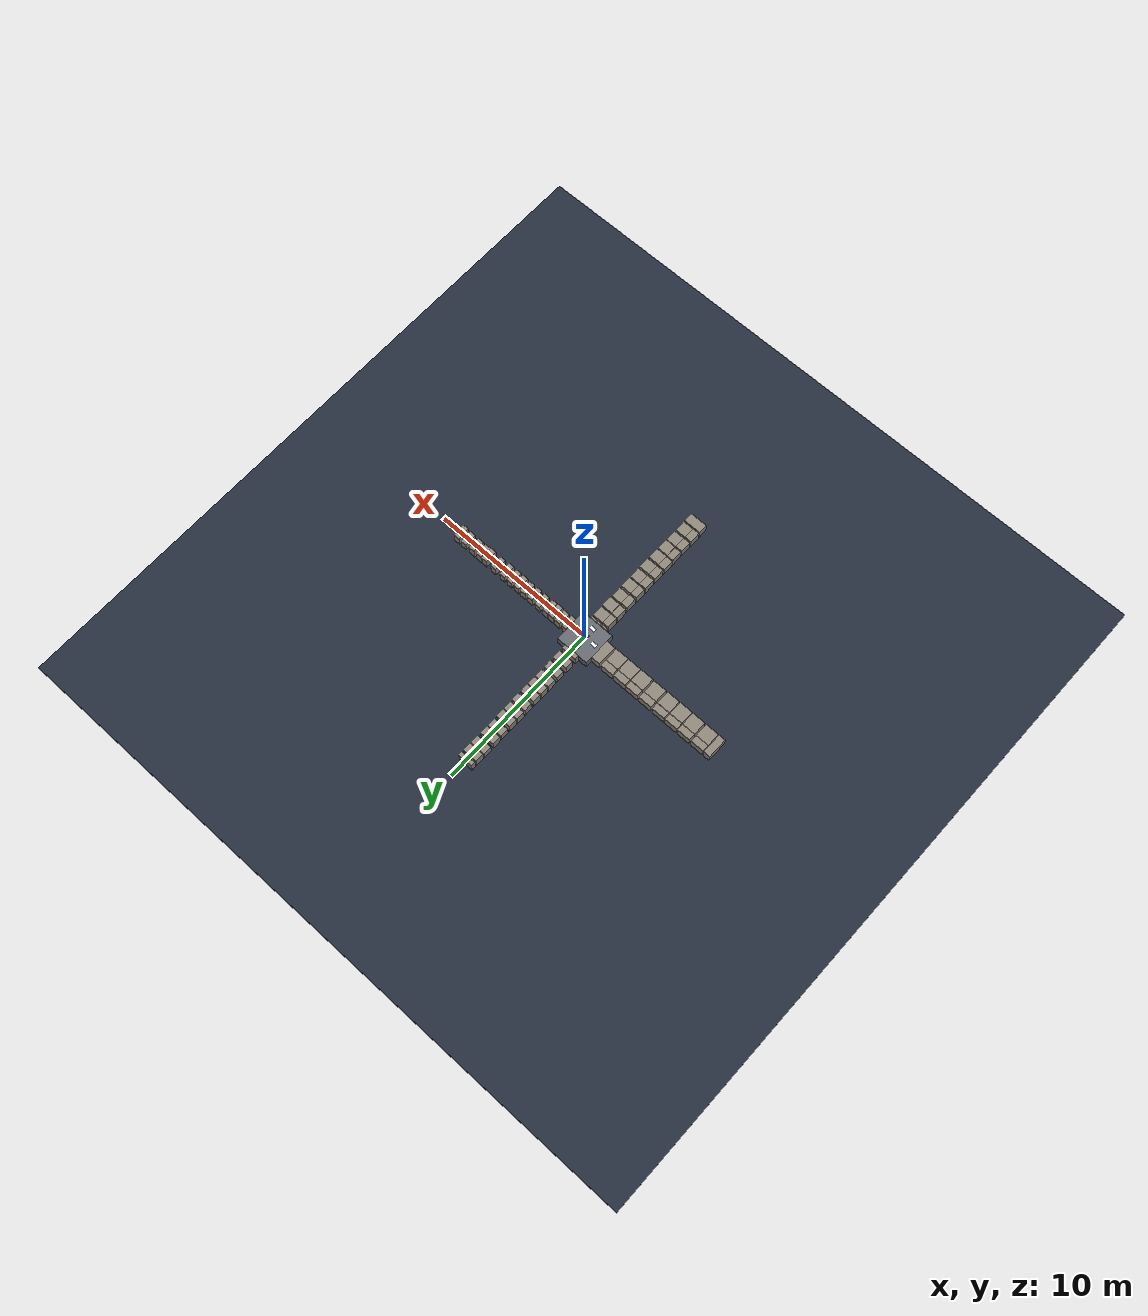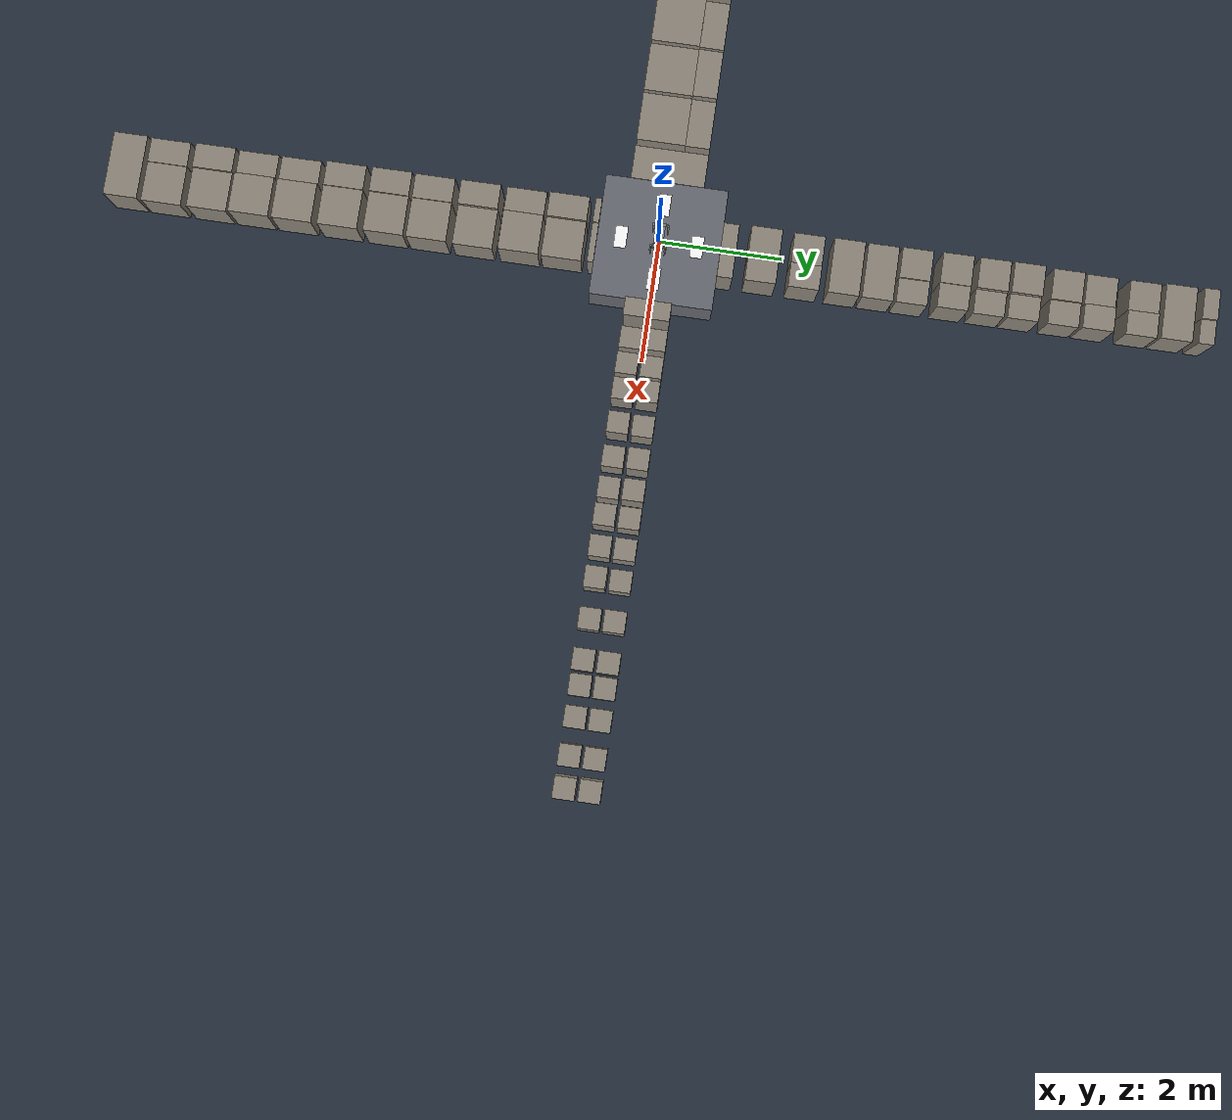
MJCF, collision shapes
<mujoco model="two_row_stones_cross_1_4_7_10">
  <include file="dog_502.xml"/>
  <statistic center="0 0 0.12" extent="1.35" />
  <visual>
    <headlight diffuse="0.6 0.6 0.6" ambient="0.3 0.3 0.3" specular="0 0 0" />
    <rgba haze="0.15 0.25 0.35 1" />
    <global azimuth="-130" elevation="-20" />
  </visual>
  <asset>
    <texture type="skybox" builtin="gradient" rgb1="0.3 0.5 0.7" rgb2="0 0 0" width="512" height="3072" />
    <texture type="2d" name="groundplane" builtin="checker" mark="edge" rgb1="0.18 0.22 0.28" rgb2="0.10 0.14 0.18" markrgb="0.8 0.8 0.8" width="300" height="300" />
    <material name="groundplane" texture="groundplane" texuniform="true" texrepeat="5 5" reflectance="0.0" />
    <texture name="tex_label_1" type="2d" file="./imgs/label_1.png" />
    <material name="mat_label_1" texture="tex_label_1" specular="0" shininess="0" emission="1" texrepeat="1 1" rgba="1 1 1 1" />
    <texture name="tex_label_7" type="2d" file="./imgs/label_7.png" />
    <material name="mat_label_7" texture="tex_label_7" specular="0" shininess="0" emission="1" texrepeat="1 1" rgba="1 1 1 1" />
    <texture name="tex_label_10" type="2d" file="./imgs/label_10.png" />
    <material name="mat_label_10" texture="tex_label_10" specular="0" shininess="0" emission="1" texrepeat="1 1" rgba="1 1 1 1" />
    <texture name="tex_label_4" type="2d" file="./imgs/label_4.png" />
    <material name="mat_label_4" texture="tex_label_4" specular="0" shininess="0" emission="1" texrepeat="1 1" rgba="1 1 1 1" />
  </asset>
  <worldbody>
    <light pos="0 0 1.5" dir="0 0 -1" directional="true" />

    <geom name="pit_floor" pos="0 0 -0.65" size="20 20 0.05" type="box" material="groundplane" />
    <geom name="hub" pos="0 0 -0.3" type="box" size="1.0 1.0 0.3" rgba="0.40 0.41 0.44 1" />

    <!-- neg_x direction, level 1, curriculum row 0, difficulty=0.0, stone_size=0.80m, gap choices=1..2 cells -->
    <geom name="neg_x_stone_01_merged" pos="-1.275 0 -0.2975" type="box" size="0.275 0.6 0.3025" rgba="0.55 0.52 0.47 1" />
    <geom name="neg_x_stone_02_row_a" pos="-2.05 0.4 -0.2975" type="box" size="0.4 0.2 0.3025" rgba="0.55 0.52 0.47 1" />
    <geom name="neg_x_stone_03_row_b" pos="-2.05 -0.2 -0.29" type="box" size="0.4 0.4 0.31" rgba="0.55 0.52 0.47 1" />
    <geom name="neg_x_stone_04_row_a" pos="-2.9 0.4 -0.2825" type="box" size="0.4 0.2 0.3175" rgba="0.55 0.52 0.47 1" />
    <geom name="neg_x_stone_05_row_b" pos="-2.9 -0.2 -0.29" type="box" size="0.4 0.4 0.31" rgba="0.55 0.52 0.47 1" />
    <geom name="neg_x_stone_06_row_a" pos="-3.75 0.4 -0.2975" type="box" size="0.4 0.2 0.3025" rgba="0.55 0.52 0.47 1" />
    <geom name="neg_x_stone_07_row_b" pos="-3.75 -0.2 -0.2825" type="box" size="0.4 0.4 0.3175" rgba="0.55 0.52 0.47 1" />
    <geom name="neg_x_stone_08_row_a" pos="-4.65 0.4 -0.2825" type="box" size="0.4 0.2 0.3175" rgba="0.55 0.52 0.47 1" />
    <geom name="neg_x_stone_09_row_b" pos="-4.65 -0.2 -0.2975" type="box" size="0.4 0.4 0.3025" rgba="0.55 0.52 0.47 1" />
    <geom name="neg_x_stone_10_row_a" pos="-5.55 0.4 -0.2975" type="box" size="0.4 0.2 0.3025" rgba="0.55 0.52 0.47 1" />
    <geom name="neg_x_stone_11_row_b" pos="-5.55 -0.2 -0.2825" type="box" size="0.4 0.4 0.3175" rgba="0.55 0.52 0.47 1" />
    <geom name="neg_x_stone_12_row_a" pos="-6.4 0.4 -0.29" type="box" size="0.4 0.2 0.31" rgba="0.55 0.52 0.47 1" />
    <geom name="neg_x_stone_13_row_b" pos="-6.4 -0.2 -0.2825" type="box" size="0.4 0.4 0.3175" rgba="0.55 0.52 0.47 1" />
    <geom name="neg_x_stone_14_row_a" pos="-7.25 0.4 -0.2975" type="box" size="0.4 0.2 0.3025" rgba="0.55 0.52 0.47 1" />
    <geom name="neg_x_stone_15_row_b" pos="-7.25 -0.2 -0.29" type="box" size="0.4 0.4 0.31" rgba="0.55 0.52 0.47 1" />
    <geom name="neg_x_stone_16_row_a" pos="-8.15 0.4 -0.2825" type="box" size="0.4 0.2 0.3175" rgba="0.55 0.52 0.47 1" />
    <geom name="neg_x_stone_17_row_b" pos="-8.15 -0.2 -0.2975" type="box" size="0.4 0.4 0.3025" rgba="0.55 0.52 0.47 1" />
    <geom name="neg_x_stone_18_merged" pos="-8.8 0 -0.29" type="box" size="0.2 0.6 0.31" rgba="0.55 0.52 0.47 1" />
    <geom name="neg_x_label" pos="-0.62 0 0.002" type="box" size="0.18 0.1 0.0001" material="mat_label_1" contype="0" conaffinity="0" group="1" rgba="1 1 1 1" />

    <!-- pos_y direction, level 7, curriculum row 6, difficulty=0.6, stone_size=0.50m, gap choices=1..4 cells -->
    <geom name="pos_y_stone_01_row_a" pos="0.25 1.125 -0.2675" type="box" size="0.2 0.125 0.3325" rgba="0.55 0.52 0.47 1" />
    <geom name="pos_y_stone_02_row_b" pos="-0.2 1.125 -0.275" type="box" size="0.25 0.125 0.325" rgba="0.55 0.52 0.47 1" />
    <geom name="pos_y_stone_03_row_a" pos="0.25 1.7 -0.2525" type="box" size="0.2 0.25 0.3475" rgba="0.55 0.52 0.47 1" />
    <geom name="pos_y_stone_04_row_b" pos="-0.2 1.7 -0.245" type="box" size="0.25 0.25 0.355" rgba="0.55 0.52 0.47 1" />
    <geom name="pos_y_stone_05_row_a" pos="0.25 2.4 -0.26" type="box" size="0.2 0.25 0.34" rgba="0.55 0.52 0.47 1" />
    <geom name="pos_y_stone_06_row_b" pos="-0.2 2.4 -0.275" type="box" size="0.25 0.25 0.325" rgba="0.55 0.52 0.47 1" />
    <geom name="pos_y_stone_07_merged" pos="0 3.05 -0.2675" type="box" size="0.45 0.25 0.3325" rgba="0.55 0.52 0.47 1" />
    <geom name="pos_y_stone_08_merged" pos="0 3.6 -0.275" type="box" size="0.45 0.25 0.325" rgba="0.55 0.52 0.47 1" />
    <geom name="pos_y_stone_09_row_a" pos="0.25 4.15 -0.275" type="box" size="0.2 0.25 0.325" rgba="0.55 0.52 0.47 1" />
    <geom name="pos_y_stone_10_row_b" pos="-0.2 4.15 -0.26" type="box" size="0.25 0.25 0.34" rgba="0.55 0.52 0.47 1" />
    <geom name="pos_y_stone_11_row_a" pos="0.25 4.8 -0.2525" type="box" size="0.2 0.25 0.3475" rgba="0.55 0.52 0.47 1" />
    <geom name="pos_y_stone_12_row_b" pos="-0.2 4.8 -0.245" type="box" size="0.25 0.25 0.355" rgba="0.55 0.52 0.47 1" />
    <geom name="pos_y_stone_13_row_a" pos="0.25 5.4 -0.29" type="box" size="0.2 0.25 0.31" rgba="0.55 0.52 0.47 1" />
    <geom name="pos_y_stone_14_row_b" pos="-0.2 5.4 -0.245" type="box" size="0.25 0.25 0.355" rgba="0.55 0.52 0.47 1" />
    <geom name="pos_y_stone_15_row_a" pos="0.25 5.95 -0.2825" type="box" size="0.2 0.25 0.3175" rgba="0.55 0.52 0.47 1" />
    <geom name="pos_y_stone_16_row_b" pos="-0.2 5.95 -0.2375" type="box" size="0.25 0.25 0.3625" rgba="0.55 0.52 0.47 1" />
    <geom name="pos_y_stone_17_row_a" pos="0.25 6.6 -0.29" type="box" size="0.2 0.25 0.31" rgba="0.55 0.52 0.47 1" />
    <geom name="pos_y_stone_18_row_b" pos="-0.2 6.6 -0.2675" type="box" size="0.25 0.25 0.3325" rgba="0.55 0.52 0.47 1" />
    <geom name="pos_y_stone_19_row_a" pos="0.25 7.15 -0.2675" type="box" size="0.2 0.25 0.3325" rgba="0.55 0.52 0.47 1" />
    <geom name="pos_y_stone_20_row_b" pos="-0.2 7.15 -0.29" type="box" size="0.25 0.25 0.31" rgba="0.55 0.52 0.47 1" />
    <geom name="pos_y_stone_21_row_a" pos="0.25 7.85 -0.275" type="box" size="0.2 0.25 0.325" rgba="0.55 0.52 0.47 1" />
    <geom name="pos_y_stone_22_row_b" pos="-0.2 7.85 -0.29" type="box" size="0.25 0.25 0.31" rgba="0.55 0.52 0.47 1" />
    <geom name="pos_y_stone_23_merged" pos="0 8.4 -0.2525" type="box" size="0.45 0.25 0.3475" rgba="0.55 0.52 0.47 1" />
    <geom name="pos_y_stone_24_row_a" pos="0.25 8.875 -0.2525" type="box" size="0.2 0.125 0.3475" rgba="0.55 0.52 0.47 1" />
    <geom name="pos_y_stone_25_row_b" pos="-0.2 8.875 -0.23" type="box" size="0.25 0.125 0.37" rgba="0.55 0.52 0.47 1" />
    <geom name="pos_y_label" pos="0 0.62 0.002" type="box" size="0.1 0.18 0.0001" material="mat_label_7" quat="0.7071067811865476 0 0 0.7071067811865475" contype="0" conaffinity="0" group="1" rgba="1 1 1 1" />

    <!-- pos_x direction, level 10, curriculum row 9, difficulty=0.9, stone_size=0.35m, gap choices=1..6 cells -->
    <geom name="pos_x_stone_01_row_a" pos="1.15 -0.225 -0.2375" type="box" size="0.15 0.175 0.3625" rgba="0.55 0.52 0.47 1" />
    <geom name="pos_x_stone_02_row_b" pos="1.15 0.175 -0.26" type="box" size="0.15 0.175 0.34" rgba="0.55 0.52 0.47 1" />
    <geom name="pos_x_stone_03_row_a" pos="1.625 -0.225 -0.2975" type="box" size="0.175 0.175 0.3025" rgba="0.55 0.52 0.47 1" />
    <geom name="pos_x_stone_04_row_b" pos="1.625 0.175 -0.26" type="box" size="0.175 0.175 0.34" rgba="0.55 0.52 0.47 1" />
    <geom name="pos_x_stone_05_row_a" pos="2.075 -0.225 -0.2375" type="box" size="0.175 0.175 0.3625" rgba="0.55 0.52 0.47 1" />
    <geom name="pos_x_stone_06_row_b" pos="2.075 0.175 -0.2525" type="box" size="0.175 0.175 0.3475" rgba="0.55 0.52 0.47 1" />
    <geom name="pos_x_stone_07_row_a" pos="2.475 -0.225 -0.2675" type="box" size="0.175 0.175 0.3325" rgba="0.55 0.52 0.47 1" />
    <geom name="pos_x_stone_08_row_b" pos="2.475 0.175 -0.245" type="box" size="0.175 0.175 0.355" rgba="0.55 0.52 0.47 1" />
    <geom name="pos_x_stone_09_row_a" pos="3.025 -0.225 -0.275" type="box" size="0.175 0.175 0.325" rgba="0.55 0.52 0.47 1" />
    <geom name="pos_x_stone_10_row_b" pos="3.025 0.175 -0.2975" type="box" size="0.175 0.175 0.3025" rgba="0.55 0.52 0.47 1" />
    <geom name="pos_x_stone_11_row_a" pos="3.575 -0.225 -0.29" type="box" size="0.175 0.175 0.31" rgba="0.55 0.52 0.47 1" />
    <geom name="pos_x_stone_12_row_b" pos="3.575 0.175 -0.2525" type="box" size="0.175 0.175 0.3475" rgba="0.55 0.52 0.47 1" />
    <geom name="pos_x_stone_13_row_a" pos="4.075 -0.225 -0.2975" type="box" size="0.175 0.175 0.3025" rgba="0.55 0.52 0.47 1" />
    <geom name="pos_x_stone_14_row_b" pos="4.075 0.175 -0.2525" type="box" size="0.175 0.175 0.3475" rgba="0.55 0.52 0.47 1" />
    <geom name="pos_x_stone_15_row_a" pos="4.525 -0.225 -0.2525" type="box" size="0.175 0.175 0.3475" rgba="0.55 0.52 0.47 1" />
    <geom name="pos_x_stone_16_row_b" pos="4.525 0.175 -0.2675" type="box" size="0.175 0.175 0.3325" rgba="0.55 0.52 0.47 1" />
    <geom name="pos_x_stone_17_row_a" pos="5.025 -0.225 -0.26" type="box" size="0.175 0.175 0.34" rgba="0.55 0.52 0.47 1" />
    <geom name="pos_x_stone_18_row_b" pos="5.025 0.175 -0.2675" type="box" size="0.175 0.175 0.3325" rgba="0.55 0.52 0.47 1" />
    <geom name="pos_x_stone_19_row_a" pos="5.525 -0.225 -0.23" type="box" size="0.175 0.175 0.37" rgba="0.55 0.52 0.47 1" />
    <geom name="pos_x_stone_20_row_b" pos="5.525 0.175 -0.2825" type="box" size="0.175 0.175 0.3175" rgba="0.55 0.52 0.47 1" />
    <geom name="pos_x_stone_21_row_a" pos="6.175 -0.225 -0.2975" type="box" size="0.175 0.175 0.3025" rgba="0.55 0.52 0.47 1" />
    <geom name="pos_x_stone_22_row_b" pos="6.175 0.175 -0.245" type="box" size="0.175 0.175 0.355" rgba="0.55 0.52 0.47 1" />
    <geom name="pos_x_stone_23_row_a" pos="6.825 -0.225 -0.2375" type="box" size="0.175 0.175 0.3625" rgba="0.55 0.52 0.47 1" />
    <geom name="pos_x_stone_24_row_b" pos="6.825 0.175 -0.2375" type="box" size="0.175 0.175 0.3625" rgba="0.55 0.52 0.47 1" />
    <geom name="pos_x_stone_25_row_a" pos="7.225 -0.225 -0.2975" type="box" size="0.175 0.175 0.3025" rgba="0.55 0.52 0.47 1" />
    <geom name="pos_x_stone_26_row_b" pos="7.225 0.175 -0.245" type="box" size="0.175 0.175 0.355" rgba="0.55 0.52 0.47 1" />
    <geom name="pos_x_stone_27_row_a" pos="7.725 -0.225 -0.2975" type="box" size="0.175 0.175 0.3025" rgba="0.55 0.52 0.47 1" />
    <geom name="pos_x_stone_28_row_b" pos="7.725 0.175 -0.245" type="box" size="0.175 0.175 0.355" rgba="0.55 0.52 0.47 1" />
    <geom name="pos_x_stone_29_row_a" pos="8.325 -0.225 -0.29" type="box" size="0.175 0.175 0.31" rgba="0.55 0.52 0.47 1" />
    <geom name="pos_x_stone_30_row_b" pos="8.325 0.175 -0.29" type="box" size="0.175 0.175 0.31" rgba="0.55 0.52 0.47 1" />
    <geom name="pos_x_stone_31_row_a" pos="8.825 -0.225 -0.23" type="box" size="0.175 0.175 0.37" rgba="0.55 0.52 0.47 1" />
    <geom name="pos_x_stone_32_row_b" pos="8.825 0.175 -0.26" type="box" size="0.175 0.175 0.34" rgba="0.55 0.52 0.47 1" />
    <geom name="pos_x_label" pos="0.62 0 0.002" type="box" size="0.18 0.1 0.0001" material="mat_label_10" contype="0" conaffinity="0" group="1" rgba="1 1 1 1" />

    <!-- neg_y direction, level 4, curriculum row 3, difficulty=0.3, stone_size=0.65m, gap choices=1..2 cells -->
    <geom name="neg_y_stone_01_row_a" pos="-0.35 -1.05 -0.2525" type="box" size="0.2 0.05 0.3475" rgba="0.55 0.52 0.47 1" />
    <geom name="neg_y_stone_02_row_b" pos="0.175 -1.05 -0.2675" type="box" size="0.325 0.05 0.3325" rgba="0.55 0.52 0.47 1" />
    <geom name="neg_y_stone_03_row_a" pos="-0.35 -1.525 -0.2525" type="box" size="0.2 0.325 0.3475" rgba="0.55 0.52 0.47 1" />
    <geom name="neg_y_stone_04_row_b" pos="0.175 -1.525 -0.2825" type="box" size="0.325 0.325 0.3175" rgba="0.55 0.52 0.47 1" />
    <geom name="neg_y_stone_05_row_a" pos="-0.35 -2.225 -0.275" type="box" size="0.2 0.325 0.325" rgba="0.55 0.52 0.47 1" />
    <geom name="neg_y_stone_06_row_b" pos="0.175 -2.225 -0.26" type="box" size="0.325 0.325 0.34" rgba="0.55 0.52 0.47 1" />
    <geom name="neg_y_stone_07_row_a" pos="-0.35 -2.975 -0.26" type="box" size="0.2 0.325 0.34" rgba="0.55 0.52 0.47 1" />
    <geom name="neg_y_stone_08_row_b" pos="0.175 -2.975 -0.2975" type="box" size="0.325 0.325 0.3025" rgba="0.55 0.52 0.47 1" />
    <geom name="neg_y_stone_09_row_a" pos="-0.35 -3.725 -0.2675" type="box" size="0.2 0.325 0.3325" rgba="0.55 0.52 0.47 1" />
    <geom name="neg_y_stone_10_row_b" pos="0.175 -3.725 -0.275" type="box" size="0.325 0.325 0.325" rgba="0.55 0.52 0.47 1" />
    <geom name="neg_y_stone_11_row_a" pos="-0.35 -4.425 -0.2525" type="box" size="0.2 0.325 0.3475" rgba="0.55 0.52 0.47 1" />
    <geom name="neg_y_stone_12_row_b" pos="0.175 -4.425 -0.2675" type="box" size="0.325 0.325 0.3325" rgba="0.55 0.52 0.47 1" />
    <geom name="neg_y_stone_13_row_a" pos="-0.35 -5.175 -0.26" type="box" size="0.2 0.325 0.34" rgba="0.55 0.52 0.47 1" />
    <geom name="neg_y_stone_14_row_b" pos="0.175 -5.175 -0.2675" type="box" size="0.325 0.325 0.3325" rgba="0.55 0.52 0.47 1" />
    <geom name="neg_y_stone_15_row_a" pos="-0.35 -5.925 -0.2975" type="box" size="0.2 0.325 0.3025" rgba="0.55 0.52 0.47 1" />
    <geom name="neg_y_stone_16_row_b" pos="0.175 -5.925 -0.2675" type="box" size="0.325 0.325 0.3325" rgba="0.55 0.52 0.47 1" />
    <geom name="neg_y_stone_17_row_a" pos="-0.35 -6.625 -0.2975" type="box" size="0.2 0.325 0.3025" rgba="0.55 0.52 0.47 1" />
    <geom name="neg_y_stone_18_row_b" pos="0.175 -6.625 -0.26" type="box" size="0.325 0.325 0.34" rgba="0.55 0.52 0.47 1" />
    <geom name="neg_y_stone_19_row_a" pos="-0.35 -7.325 -0.2675" type="box" size="0.2 0.325 0.3325" rgba="0.55 0.52 0.47 1" />
    <geom name="neg_y_stone_20_row_b" pos="0.175 -7.325 -0.29" type="box" size="0.325 0.325 0.31" rgba="0.55 0.52 0.47 1" />
    <geom name="neg_y_stone_21_row_a" pos="-0.35 -8.075 -0.29" type="box" size="0.2 0.325 0.31" rgba="0.55 0.52 0.47 1" />
    <geom name="neg_y_stone_22_row_b" pos="0.175 -8.075 -0.2975" type="box" size="0.325 0.325 0.3025" rgba="0.55 0.52 0.47 1" />
    <geom name="neg_y_stone_23_merged" pos="-0.025 -8.725 -0.2675" type="box" size="0.525 0.275 0.3325" rgba="0.55 0.52 0.47 1" />
    <geom name="neg_y_label" pos="0 -0.62 0.002" type="box" size="0.1 0.18 0.0001" material="mat_label_4" quat="0.7071067811865476 0 0 -0.7071067811865475" contype="0" conaffinity="0" group="1" rgba="1 1 1 1" />
  </worldbody>
</mujoco>

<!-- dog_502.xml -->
<mujoco model="dog_502_description">
  <compiler angle="radian" meshdir="../../../dog_502_description/meshes"/>

  <default>
    <joint damping="0.01" armature="0.01" frictionloss="0.02"/>
    <geom condim="3" friction="0.8 0.02 0.01"/>
    <default class="visual">
      <geom type="mesh" contype="0" conaffinity="0" group="2"/>
    </default>
  </default>

  <asset>
    <material name="light_grey" rgba="0.75294 0.75294 0.75294 1"/>
    <material name="black" rgba="0.1 0.1 0.1 1"/>
    <material name="red" rgba="1.0 0.0 0.0 1"/>

    <mesh name="base_link_mesh" file="base_link.STL"/>
    <mesh name="FL_hip_mesh" file="FL_hip.STL"/>
    <mesh name="FR_hip_mesh" file="FR_hip.STL"/>
    <mesh name="RL_hip_mesh" file="RL_hip.STL"/>
    <mesh name="RR_hip_mesh" file="RR_hip.STL"/>
    <mesh name="FL_thigh_mesh" file="FL_thigh.STL"/>
    <mesh name="FR_thigh_mesh" file="FR_thigh.STL"/>
    <mesh name="RL_thigh_mesh" file="RL_thigh.STL"/>
    <mesh name="RR_thigh_mesh" file="RR_thigh.STL"/>
    <mesh name="FL_calf_mesh" file="FL_calf.STL"/>
    <mesh name="FR_calf_mesh" file="FR_calf.STL"/>
    <mesh name="RL_calf_mesh" file="RL_calf.STL"/>
    <mesh name="RR_calf_mesh" file="RR_calf.STL"/>
  </asset>

  <worldbody>
    <body name="base" pos="0 0 0.31">
      <inertial pos="0.000037 0.001297 -0.002295" mass="4.142449" diaginertia="0.013374 0.031506 0.039388"/>
      <freejoint name="root"/>
      <geom mesh="base_link_mesh" material="light_grey" class="visual"/>
      <geom name="base_collision" type="box" size="0.15 0.075 0.04"/>

      <body name="camera" pos="0.255 0 0.04185" quat="0.984811 0 0.173672 0">
        <geom name="camera_visual" type="box" size="0.0125 0.06 0.0145" material="black" contype="0" conaffinity="0" group="2"/>
      </body>

      <body name="FL_hip" pos="0.1767 0.05 0">
        <inertial pos="-0.00457081 -0.00969999 0.0002578" mass="0.50149755" diaginertia="0.00011158 0.00021376 0.00016301"/>
        <joint name="FL_hip_joint" axis="1 0 0" range="-0.837758 0.837758" actuatorfrcrange="-17 17"/>
        <geom mesh="FL_hip_mesh" material="light_grey" class="visual"/>
        <geom name="FL_hip_collision" type="box" size="0.025 0.04 0.03"/>
        <body name="FL_thigh" pos="0 0.0684 0">
          <inertial pos="-0.00194747 -0.02547458 -0.01388663" mass="0.64867804" diaginertia="0.00138293 0.00137329 0.00032193"/>
          <joint name="FL_thigh_joint" axis="0 1 0" range="-1.5708 3.49066" actuatorfrcrange="-17 17"/>
          <geom mesh="FL_thigh_mesh" material="light_grey" class="visual"/>
          <geom name="FL_thigh_collision" type="box" pos="0 0 -0.09" quat="0.707107 0 0.707107 0" size="0.09 0.015 0.0175"/>
          <body name="FL_calf" pos="0 0 -0.18">
            <inertial pos="0.01310003 -0.00009903 -0.09935467" mass="0.06024443" diaginertia="0.0003599 0.00036988 0.00001166"/>
            <joint name="FL_calf_joint" axis="0 1 0" range="-2.72271 -0.837758" actuatorfrcrange="-17 17"/>
            <geom mesh="FL_calf_mesh" material="light_grey" class="visual"/>
            <geom name="FL_calf_collision_0" type="box" pos="0.013 0 -0.053" quat="0.988392 0 -0.151909 0" size="0.00825 0.0075 0.05106"/>
            <geom name="FL_calf_collision_1" type="box" pos="0.0285 0 -0.119" quat="0.997889 0 -0.064954 0" size="0.009 0.0075 0.03"/>
            <geom name="FL_calf_collision_2" type="box" pos="0.02021 0 -0.15878" quat="0.968912 0 0.247404 0" size="0.0125 0.0075 0.02"/>
            <geom name="FL_calf_collision_3" type="box" pos="0.03 0 -0.16" quat="0.998750 0 0.049979 0" size="0.01 0.0075 0.015"/>
            <body name="FL_foot" pos="0 0 -0.18">
              <inertial pos="0 0 0" mass="0.04" diaginertia="0.0000096 0.0000096 0.0000096"/>
              <geom name="FL_foot_visual" type="sphere" size="0.01" material="red" contype="0" conaffinity="0" group="2"/>
              <geom name="FL_foot_collision" type="sphere" pos="0.015 0 0" size="0.0225"/>
            </body>
          </body>
        </body>
      </body>

      <body name="FR_hip" pos="0.1767 -0.05 0">
        <inertial pos="-0.00444412 0.00969999 0.00054368" mass="0.50149755" diaginertia="0.00011122 0.00021421 0.00016383"/>
        <joint name="FR_hip_joint" axis="1 0 0" range="-0.837758 0.837758" actuatorfrcrange="-17 17"/>
        <geom mesh="FR_hip_mesh" material="light_grey" class="visual"/>
        <geom name="FR_hip_collision" type="box" size="0.025 0.04 0.03"/>
        <body name="FR_thigh" pos="0 -0.0684 0">
          <inertial pos="-0.00096707 0.02548196 -0.01388686" mass="0.64867934" diaginertia="0.00138275 0.00137516 0.00032358"/>
          <joint name="FR_thigh_joint" axis="0 1 0" range="-1.5708 3.49066" actuatorfrcrange="-17 17"/>
          <geom mesh="FR_thigh_mesh" material="light_grey" class="visual"/>
          <geom name="FR_thigh_collision" type="box" pos="0 0 -0.09" quat="0.707107 0 0.707107 0" size="0.09 0.015 0.0175"/>
          <body name="FR_calf" pos="0 0 -0.18">
            <inertial pos="0.01310003 0.00010097 -0.09935467" mass="0.06024443" diaginertia="0.0003599 0.00036988 0.00001166"/>
            <joint name="FR_calf_joint" axis="0 1 0" range="-2.72271 -0.837758" actuatorfrcrange="-17 17"/>
            <geom mesh="FR_calf_mesh" material="light_grey" class="visual"/>
            <geom name="FR_calf_collision_0" type="box" pos="0.013 0 -0.053" quat="0.988392 0 -0.151909 0" size="0.00825 0.0075 0.05106"/>
            <geom name="FR_calf_collision_1" type="box" pos="0.0285 0 -0.119" quat="0.997889 0 -0.064954 0" size="0.009 0.0075 0.03"/>
            <geom name="FR_calf_collision_2" type="box" pos="0.02021 0 -0.15878" quat="0.968912 0 0.247404 0" size="0.0125 0.0075 0.02"/>
            <geom name="FR_calf_collision_3" type="box" pos="0.03 0 -0.16" quat="0.998750 0 0.049979 0" size="0.01 0.0075 0.015"/>
            <body name="FR_foot" pos="0 0 -0.18">
              <inertial pos="0 0 0" mass="0.04" diaginertia="0.0000096 0.0000096 0.0000096"/>
              <geom name="FR_foot_visual" type="sphere" size="0.01" material="red" contype="0" conaffinity="0" group="2"/>
              <geom name="FR_foot_collision" type="sphere" pos="0.015 0 0" size="0.0225"/>
            </body>
          </body>
        </body>
      </body>

      <body name="RL_hip" pos="-0.1767 0.05 0">
        <inertial pos="0.00329874 -0.00969999 0.00094432" mass="0.50149755" diaginertia="0.00011271 0.00021836 0.00016649"/>
        <joint name="RL_hip_joint" axis="1 0 0" range="-0.837758 0.837758" actuatorfrcrange="-17 17"/>
        <geom mesh="RL_hip_mesh" material="light_grey" class="visual"/>
        <geom name="RL_hip_collision" type="box" size="0.025 0.04 0.03"/>
        <body name="RL_thigh" pos="0 0.0684 0">
          <inertial pos="-0.00120536 -0.02547458 -0.01523822" mass="0.64867804" diaginertia="0.00135600 0.00134928 0.00032485"/>
          <joint name="RL_thigh_joint" axis="0 1 0" range="-1.5708 3.49066" actuatorfrcrange="-17 17"/>
          <geom mesh="RL_thigh_mesh" material="light_grey" class="visual"/>
          <geom name="RL_thigh_collision" type="box" pos="0 0 -0.09" quat="0.707107 0 0.707107 0" size="0.09 0.015 0.0175"/>
          <body name="RL_calf" pos="0 0 -0.18">
            <inertial pos="0.01310003 -0.00009903 -0.09935467" mass="0.06024443" diaginertia="0.0003599 0.00036988 0.00001166"/>
            <joint name="RL_calf_joint" axis="0 1 0" range="-2.72271 -0.837758" actuatorfrcrange="-17 17"/>
            <geom mesh="RL_calf_mesh" material="light_grey" class="visual"/>
            <geom name="RL_calf_collision_0" type="box" pos="0.013 0 -0.053" quat="0.988392 0 -0.151909 0" size="0.00825 0.0075 0.05106"/>
            <geom name="RL_calf_collision_1" type="box" pos="0.0285 0 -0.119" quat="0.997889 0 -0.064954 0" size="0.009 0.0075 0.03"/>
            <geom name="RL_calf_collision_2" type="box" pos="0.02021 0 -0.15878" quat="0.968912 0 0.247404 0" size="0.0125 0.0075 0.02"/>
            <geom name="RL_calf_collision_3" type="box" pos="0.03 0 -0.16" quat="0.998750 0 0.049979 0" size="0.01 0.0075 0.015"/>
            <body name="RL_foot" pos="0 0 -0.18">
              <inertial pos="0 0 0" mass="0.04" diaginertia="0.0000096 0.0000096 0.0000096"/>
              <geom name="RL_foot_visual" type="sphere" size="0.01" material="red" contype="0" conaffinity="0" group="2"/>
              <geom name="RL_foot_collision" type="sphere" pos="0.015 0 0" size="0.0225"/>
            </body>
          </body>
        </body>
      </body>

      <body name="RR_hip" pos="-0.1767 -0.05 0">
        <inertial pos="0.00444412 0.00969999 -0.00054368" mass="0.50149755" diaginertia="0.00011122 0.00021421 0.00016383"/>
        <joint name="RR_hip_joint" axis="1 0 0" range="-0.837758 0.837758" actuatorfrcrange="-17 17"/>
        <geom mesh="RR_hip_mesh" material="light_grey" class="visual"/>
        <geom name="RR_hip_collision" type="box" size="0.025 0.04 0.03"/>
        <body name="RR_thigh" pos="0 -0.0684 0">
          <inertial pos="-0.00212669 0.02547451 -0.01490311" mass="0.64867934" diaginertia="0.00136777 0.00135386 0.00031766"/>
          <joint name="RR_thigh_joint" axis="0 1 0" range="-1.5708 3.49066" actuatorfrcrange="-17 17"/>
          <geom mesh="RR_thigh_mesh" material="light_grey" class="visual"/>
          <geom name="RR_thigh_collision" type="box" pos="0 0 -0.09" quat="0.707107 0 0.707107 0" size="0.09 0.015 0.0175"/>
          <body name="RR_calf" pos="0 0 -0.18">
            <inertial pos="0.01310003 0.00010097 -0.09935467" mass="0.06024443" diaginertia="0.0003599 0.00036988 0.00001166"/>
            <joint name="RR_calf_joint" axis="0 1 0" range="-2.72271 -0.837758" actuatorfrcrange="-17 17"/>
            <geom mesh="RR_calf_mesh" material="light_grey" class="visual"/>
            <geom name="RR_calf_collision_0" type="box" pos="0.013 0 -0.053" quat="0.988392 0 -0.151909 0" size="0.00825 0.0075 0.05106"/>
            <geom name="RR_calf_collision_1" type="box" pos="0.0285 0 -0.119" quat="0.997889 0 -0.064954 0" size="0.009 0.0075 0.03"/>
            <geom name="RR_calf_collision_2" type="box" pos="0.02021 0 -0.15878" quat="0.968912 0 0.247404 0" size="0.0125 0.0075 0.02"/>
            <geom name="RR_calf_collision_3" type="box" pos="0.03 0 -0.16" quat="0.998750 0 0.049979 0" size="0.01 0.0075 0.015"/>
            <body name="RR_foot" pos="0 0 -0.18">
              <inertial pos="0 0 0" mass="0.04" diaginertia="0.0000096 0.0000096 0.0000096"/>
              <geom name="RR_foot_visual" type="sphere" size="0.01" material="red" contype="0" conaffinity="0" group="2"/>
              <geom name="RR_foot_collision" type="sphere" pos="0.015 0 0" size="0.0225"/>
            </body>
          </body>
        </body>
      </body>
    </body>
  </worldbody>

  <actuator>
    <motor name="FL_hip" joint="FL_hip_joint" ctrllimited="true" ctrlrange="-17 17"/>
    <motor name="FL_thigh" joint="FL_thigh_joint" ctrllimited="true" ctrlrange="-17 17"/>
    <motor name="FL_calf" joint="FL_calf_joint" ctrllimited="true" ctrlrange="-17 17"/>
    <motor name="FR_hip" joint="FR_hip_joint" ctrllimited="true" ctrlrange="-17 17"/>
    <motor name="FR_thigh" joint="FR_thigh_joint" ctrllimited="true" ctrlrange="-17 17"/>
    <motor name="FR_calf" joint="FR_calf_joint" ctrllimited="true" ctrlrange="-17 17"/>
    <motor name="RL_hip" joint="RL_hip_joint" ctrllimited="true" ctrlrange="-17 17"/>
    <motor name="RL_thigh" joint="RL_thigh_joint" ctrllimited="true" ctrlrange="-17 17"/>
    <motor name="RL_calf" joint="RL_calf_joint" ctrllimited="true" ctrlrange="-17 17"/>
    <motor name="RR_hip" joint="RR_hip_joint" ctrllimited="true" ctrlrange="-17 17"/>
    <motor name="RR_thigh" joint="RR_thigh_joint" ctrllimited="true" ctrlrange="-17 17"/>
    <motor name="RR_calf" joint="RR_calf_joint" ctrllimited="true" ctrlrange="-17 17"/>
  </actuator>
</mujoco>
